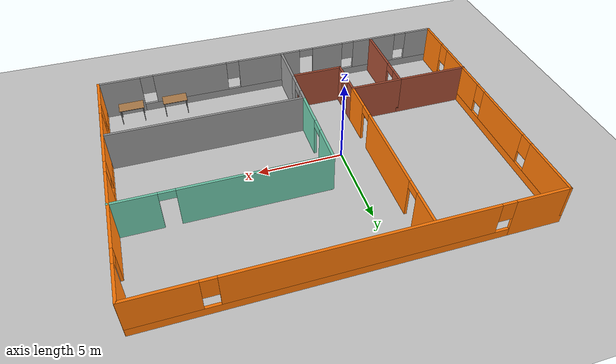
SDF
<sdf version="1.6">
 <world name="default">
  <model name="ground_plane">
   <static>1</static>
   <link name="link">
    <collision name="collision">
     <geometry><plane><normal>0 0 1</normal><size>100 100</size></plane></geometry>
     <surface><friction><ode><mu>100</mu><mu2>50</mu2></ode></friction></surface>
    </collision>
    <visual name="visual">
     <cast_shadows>0</cast_shadows>
     <geometry><plane><normal>0 0 1</normal><size>100 100</size></plane></geometry>
     <material>
      <script><uri>file://media/materials/scripts/gazebo.material</uri><name>Gazebo/Grey</name></script>
     </material>
    </visual>
   </link>
  </model>
  <model name="my_office">
   <pose>1.93379 0.156321 0 0 -0 0</pose>
   <link name="Wall_10">
    <collision name="Wall_10_Collision">
     <geometry><box><size>4.5 0.15 2.5</size></box></geometry>
     <pose>0 0 1.25 0 -0 0</pose>
    </collision>
    <visual name="Wall_10_Visual">
     <pose>0 0 1.25 0 -0 0</pose>
     <geometry><box><size>4.5 0.15 2.5</size></box></geometry>
     <material>
      <script><uri>file://media/materials/scripts/gazebo.material</uri><name>Gazebo/Bricks</name></script>
      <ambient>1 1 1 1</ambient>
     </material>
     <meta><layer>0</layer></meta>
    </visual>
    <pose>-8.9 -3.09004 0 0 -0 0</pose>
   </link>
   <link name="Wall_11">
    <pose>-6.725 -5.51504 0 0 0 -1.5708</pose>
    <visual name="Wall_11_Visual_0">
     <pose>-1.99975 0 1.25 0 -0 0</pose>
     <geometry><box><size>1.00049 0.15 2.5</size></box></geometry>
     <material>
      <script><uri>file://media/materials/scripts/gazebo.material</uri><name>Gazebo/Bricks</name></script>
      <ambient>1 1 1 1</ambient>
     </material>
     <meta><layer>0</layer></meta>
    </visual>
    <collision name="Wall_11_Collision_0">
     <geometry><box><size>1.00049 0.15 2.5</size></box></geometry>
     <pose>-1.99975 0 1.25 0 -0 0</pose>
    </collision>
    <visual name="Wall_11_Visual_1">
     <pose>0.950245 0 1.25 0 -0 0</pose>
     <geometry><box><size>3.09951 0.15 2.5</size></box></geometry>
     <material>
      <script><uri>file://media/materials/scripts/gazebo.material</uri><name>Gazebo/Bricks</name></script>
      <ambient>1 1 1 1</ambient>
     </material>
     <meta><layer>0</layer></meta>
    </visual>
    <collision name="Wall_11_Collision_1">
     <geometry><box><size>3.09951 0.15 2.5</size></box></geometry>
     <pose>0.950245 0 1.25 0 -0 0</pose>
    </collision>
    <visual name="Wall_11_Visual_2">
     <pose>-1.04951 0 2.25 0 -0 0</pose>
     <geometry><box><size>0.9 0.15 0.5</size></box></geometry>
     <material>
      <script><uri>file://media/materials/scripts/gazebo.material</uri><name>Gazebo/Bricks</name></script>
      <ambient>1 1 1 1</ambient>
     </material>
     <meta><layer>0</layer></meta>
    </visual>
    <collision name="Wall_11_Collision_2">
     <geometry><box><size>0.9 0.15 0.5</size></box></geometry>
     <pose>-1.04951 0 2.25 0 -0 0</pose>
    </collision>
   </link>
   <link name="Wall_13">
    <collision name="Wall_13_Collision">
     <geometry><box><size>3.25 0.15 2.5</size></box></geometry>
     <pose>0 0 1.25 0 -0 0</pose>
    </collision>
    <visual name="Wall_13_Visual">
     <pose>0 0 1.25 0 -0 0</pose>
     <geometry><box><size>3.25 0.15 2.5</size></box></geometry>
     <material>
      <script><uri>file://media/materials/scripts/gazebo.material</uri><name>Gazebo/Bricks</name></script>
      <ambient>1 1 1 1</ambient>
     </material>
     <meta><layer>0</layer></meta>
    </visual>
    <pose>-5.175 -3.09004 0 0 -0 0</pose>
   </link>
   <link name="Wall_14">
    <pose>-3.625 -4.26504 0 0 0 -1.5708</pose>
    <visual name="Wall_14_Visual_0">
     <pose>-0.830666 0 1.25 0 -0 0</pose>
     <geometry><box><size>0.838667 0.15 2.5</size></box></geometry>
     <material>
      <script><uri>file://media/materials/scripts/gazebo.material</uri><name>Gazebo/Bricks</name></script>
      <ambient>1 1 1 1</ambient>
     </material>
     <meta><layer>0</layer></meta>
    </visual>
    <collision name="Wall_14_Collision_0">
     <geometry><box><size>0.838667 0.15 2.5</size></box></geometry>
     <pose>-0.830666 0 1.25 0 -0 0</pose>
    </collision>
    <visual name="Wall_14_Visual_1">
     <pose>0.869334 0 1.25 0 -0 0</pose>
     <geometry><box><size>0.761333 0.15 2.5</size></box></geometry>
     <material>
      <script><uri>file://media/materials/scripts/gazebo.material</uri><name>Gazebo/Bricks</name></script>
      <ambient>1 1 1 1</ambient>
     </material>
     <meta><layer>0</layer></meta>
    </visual>
    <collision name="Wall_14_Collision_1">
     <geometry><box><size>0.761333 0.15 2.5</size></box></geometry>
     <pose>0.869334 0 1.25 0 -0 0</pose>
    </collision>
    <visual name="Wall_14_Visual_2">
     <pose>0.038667 0 2.25 0 -0 0</pose>
     <geometry><box><size>0.9 0.15 0.5</size></box></geometry>
     <material>
      <script><uri>file://media/materials/scripts/gazebo.material</uri><name>Gazebo/Bricks</name></script>
      <ambient>1 1 1 1</ambient>
     </material>
     <meta><layer>0</layer></meta>
    </visual>
    <collision name="Wall_14_Collision_2">
     <geometry><box><size>0.9 0.15 0.5</size></box></geometry>
     <pose>0.038667 0 2.25 0 -0 0</pose>
    </collision>
   </link>
   <link name="Wall_15">
    <collision name="Wall_15_Collision">
     <geometry><box><size>3.25 0.15 2.5</size></box></geometry>
     <pose>0 0 1.25 0 -0 0</pose>
    </collision>
    <visual name="Wall_15_Visual">
     <pose>0 0 1.25 0 -0 0</pose>
     <geometry><box><size>3.25 0.15 2.5</size></box></geometry>
     <material>
      <script><uri>file://media/materials/scripts/gazebo.material</uri><name>Gazebo/Bricks</name></script>
      <ambient>1 1 1 1</ambient>
     </material>
     <meta><layer>0</layer></meta>
    </visual>
    <pose>-2.075 -5.44004 0 0 -0 0</pose>
   </link>
   <link name="Wall_16">
    <collision name="Wall_16_Collision">
     <geometry><box><size>2.75 0.15 2.5</size></box></geometry>
     <pose>0 0 1.25 0 -0 0</pose>
    </collision>
    <visual name="Wall_16_Visual">
     <pose>0 0 1.25 0 -0 0</pose>
     <geometry><box><size>2.75 0.15 2.5</size></box></geometry>
     <material>
      <script><uri>file://media/materials/scripts/gazebo.material</uri><name>Gazebo/Grey</name></script>
      <ambient>1 1 1 1</ambient>
     </material>
     <meta><layer>0</layer></meta>
    </visual>
    <pose>-0.525 -6.74004 0 0 0 -1.5708</pose>
   </link>
   <link name="Wall_20">
    <pose>-0.525 -4.26504 0 0 -0 1.5708</pose>
    <visual name="Wall_20_Visual_0">
     <pose>-0.828878 0 1.25 0 -0 0</pose>
     <geometry><box><size>0.842244 0.15 2.5</size></box></geometry>
     <material>
      <script><uri>file://media/materials/scripts/gazebo.material</uri><name>Gazebo/Grey</name></script>
      <ambient>1 1 1 1</ambient>
     </material>
     <meta><layer>0</layer></meta>
    </visual>
    <collision name="Wall_20_Collision_0">
     <geometry><box><size>0.842244 0.15 2.5</size></box></geometry>
     <pose>-0.828878 0 1.25 0 -0 0</pose>
    </collision>
    <visual name="Wall_20_Visual_1">
     <pose>0.871122 0 1.25 0 -0 0</pose>
     <geometry><box><size>0.757756 0.15 2.5</size></box></geometry>
     <material>
      <script><uri>file://media/materials/scripts/gazebo.material</uri><name>Gazebo/Grey</name></script>
      <ambient>1 1 1 1</ambient>
     </material>
     <meta><layer>0</layer></meta>
    </visual>
    <collision name="Wall_20_Collision_1">
     <geometry><box><size>0.757756 0.15 2.5</size></box></geometry>
     <pose>0.871122 0 1.25 0 -0 0</pose>
    </collision>
    <visual name="Wall_20_Visual_2">
     <pose>0.042244 0 2.25 0 -0 0</pose>
     <geometry><box><size>0.9 0.15 0.5</size></box></geometry>
     <material>
      <script><uri>file://media/materials/scripts/gazebo.material</uri><name>Gazebo/Grey</name></script>
      <ambient>1 1 1 1</ambient>
     </material>
     <meta><layer>0</layer></meta>
    </visual>
    <collision name="Wall_20_Collision_2">
     <geometry><box><size>0.9 0.15 0.5</size></box></geometry>
     <pose>0.042244 0 2.25 0 -0 0</pose>
    </collision>
   </link>
   <link name="Wall_21">
    <collision name="Wall_21_Collision">
     <geometry><box><size>11.75 0.15 2.5</size></box></geometry>
     <pose>0 0 1.25 0 -0 0</pose>
    </collision>
    <visual name="Wall_21_Visual">
     <pose>0 0 1.25 0 -0 0</pose>
     <geometry><box><size>11.75 0.15 2.5</size></box></geometry>
     <material>
      <script><uri>file://media/materials/scripts/gazebo.material</uri><name>Gazebo/Grey</name></script>
      <ambient>1 1 1 1</ambient>
     </material>
     <meta><layer>0</layer></meta>
    </visual>
    <pose>5.275 -3.09004 0 0 -0 0</pose>
   </link>
   <link name="Wall_23">
    <pose>0.006559 8.05364 0 0 -0 0</pose>
    <visual name="Wall_23_Visual_0">
     <pose>-9.56369 0 1.25 0 -0 0</pose>
     <geometry><box><size>3.12262 0.15 2.5</size></box></geometry>
     <material>
      <script><uri>file://media/materials/scripts/gazebo.material</uri><name>Gazebo/Grey</name></script>
      <ambient>0.996078 0.47451 0.0196078 1</ambient>
     </material>
     <meta><layer>0</layer></meta>
    </visual>
    <collision name="Wall_23_Collision_0">
     <geometry><box><size>3.12262 0.15 2.5</size></box></geometry>
     <pose>-9.56369 0 1.25 0 -0 0</pose>
    </collision>
    <visual name="Wall_23_Visual_1">
     <pose>1.56131 0 0.25 0 -0 0</pose>
     <geometry><box><size>19.1274 0.15 0.5</size></box></geometry>
     <material>
      <script><uri>file://media/materials/scripts/gazebo.material</uri><name>Gazebo/Grey</name></script>
      <ambient>0.996078 0.47451 0.0196078 1</ambient>
     </material>
     <meta><layer>0</layer></meta>
    </visual>
    <collision name="Wall_23_Collision_1">
     <geometry><box><size>19.1274 0.15 0.5</size></box></geometry>
     <pose>1.56131 0 0.25 0 -0 0</pose>
    </collision>
    <visual name="Wall_23_Visual_2">
     <pose>-0.219236 0 1.5 0 -0 0</pose>
     <geometry><box><size>13.9663 0.15 2</size></box></geometry>
     <material>
      <script><uri>file://media/materials/scripts/gazebo.material</uri><name>Gazebo/Grey</name></script>
      <ambient>0.996078 0.47451 0.0196078 1</ambient>
     </material>
     <meta><layer>0</layer></meta>
    </visual>
    <collision name="Wall_23_Collision_2">
     <geometry><box><size>13.9663 0.15 2</size></box></geometry>
     <pose>-0.219236 0 1.5 0 -0 0</pose>
    </collision>
    <visual name="Wall_23_Visual_3">
     <pose>9.34445 0 1.5 0 -0 0</pose>
     <geometry><box><size>3.56109 0.15 2</size></box></geometry>
     <material>
      <script><uri>file://media/materials/scripts/gazebo.material</uri><name>Gazebo/Grey</name></script>
      <ambient>0.996078 0.47451 0.0196078 1</ambient>
     </material>
     <meta><layer>0</layer></meta>
    </visual>
    <collision name="Wall_23_Collision_3">
     <geometry><box><size>3.56109 0.15 2</size></box></geometry>
     <pose>9.34445 0 1.5 0 -0 0</pose>
    </collision>
    <visual name="Wall_23_Visual_4">
     <pose>-7.60238 0 1.9 0 -0 0</pose>
     <geometry><box><size>0.8 0.15 1.2</size></box></geometry>
     <material>
      <script><uri>file://media/materials/scripts/gazebo.material</uri><name>Gazebo/Grey</name></script>
      <ambient>0.996078 0.47451 0.0196078 1</ambient>
     </material>
     <meta><layer>0</layer></meta>
    </visual>
    <collision name="Wall_23_Collision_4">
     <geometry><box><size>0.8 0.15 1.2</size></box></geometry>
     <pose>-7.60238 0 1.9 0 -0 0</pose>
    </collision>
    <visual name="Wall_23_Visual_5">
     <pose>7.16391 0 1.9 0 -0 0</pose>
     <geometry><box><size>0.8 0.15 1.2</size></box></geometry>
     <material>
      <script><uri>file://media/materials/scripts/gazebo.material</uri><name>Gazebo/Grey</name></script>
      <ambient>0.996078 0.47451 0.0196078 1</ambient>
     </material>
     <meta><layer>0</layer></meta>
    </visual>
    <collision name="Wall_23_Collision_5">
     <geometry><box><size>0.8 0.15 1.2</size></box></geometry>
     <pose>7.16391 0 1.9 0 -0 0</pose>
    </collision>
   </link>
   <link name="Wall_25">
    <pose>-3.625 2.45996 0 0 -0 1.5708</pose>
    <visual name="Wall_25_Visual_0">
     <pose>-4.67974 0 1.25 0 -0 0</pose>
     <geometry><box><size>1.89051 0.15 2.5</size></box></geometry>
     <material>
      <script><uri>file://media/materials/scripts/gazebo.material</uri><name>Gazebo/Grey</name></script>
      <ambient>0.996078 0.47451 0.0196078 1</ambient>
     </material>
     <meta><layer>0</layer></meta>
    </visual>
    <collision name="Wall_25_Collision_0">
     <geometry><box><size>1.89051 0.15 2.5</size></box></geometry>
     <pose>-4.67974 0 1.25 0 -0 0</pose>
    </collision>
    <visual name="Wall_25_Visual_1">
     <pose>-0.048041 0 1.25 0 -0 0</pose>
     <geometry><box><size>5.57289 0.15 2.5</size></box></geometry>
     <material>
      <script><uri>file://media/materials/scripts/gazebo.material</uri><name>Gazebo/Grey</name></script>
      <ambient>0.996078 0.47451 0.0196078 1</ambient>
     </material>
     <meta><layer>0</layer></meta>
    </visual>
    <collision name="Wall_25_Collision_1">
     <geometry><box><size>5.57289 0.15 2.5</size></box></geometry>
     <pose>-0.048041 0 1.25 0 -0 0</pose>
    </collision>
    <visual name="Wall_25_Visual_2">
     <pose>4.6317 0 1.25 0 -0 0</pose>
     <geometry><box><size>1.9866 0.15 2.5</size></box></geometry>
     <material>
      <script><uri>file://media/materials/scripts/gazebo.material</uri><name>Gazebo/Grey</name></script>
      <ambient>0.996078 0.47451 0.0196078 1</ambient>
     </material>
     <meta><layer>0</layer></meta>
    </visual>
    <collision name="Wall_25_Collision_2">
     <geometry><box><size>1.9866 0.15 2.5</size></box></geometry>
     <pose>4.6317 0 1.25 0 -0 0</pose>
    </collision>
    <visual name="Wall_25_Visual_3">
     <pose>-3.28449 0 2.25 0 -0 0</pose>
     <geometry><box><size>0.9 0.15 0.5</size></box></geometry>
     <material>
      <script><uri>file://media/materials/scripts/gazebo.material</uri><name>Gazebo/Grey</name></script>
      <ambient>0.996078 0.47451 0.0196078 1</ambient>
     </material>
     <meta><layer>0</layer></meta>
    </visual>
    <collision name="Wall_25_Collision_3">
     <geometry><box><size>0.9 0.15 0.5</size></box></geometry>
     <pose>-3.28449 0 2.25 0 -0 0</pose>
    </collision>
    <visual name="Wall_25_Visual_4">
     <pose>3.1884 0 2.25 0 -0 0</pose>
     <geometry><box><size>0.9 0.15 0.5</size></box></geometry>
     <material>
      <script><uri>file://media/materials/scripts/gazebo.material</uri><name>Gazebo/Grey</name></script>
      <ambient>0.996078 0.47451 0.0196078 1</ambient>
     </material>
     <meta><layer>0</layer></meta>
    </visual>
    <collision name="Wall_25_Collision_4">
     <geometry><box><size>0.9 0.15 0.5</size></box></geometry>
     <pose>3.1884 0 2.25 0 -0 0</pose>
    </collision>
   </link>
   <link name="Wall_27">
    <pose>-0.525 -0.415042 0 0 -0 1.5708</pose>
    <visual name="Wall_27_Visual_0">
     <pose>-1.58224 0 1.25 0 -0 0</pose>
     <geometry><box><size>2.33552 0.15 2.5</size></box></geometry>
     <material>
      <script><uri>file://media/materials/scripts/gazebo.material</uri><name>Gazebo/Grey</name></script>
      <ambient>0.435294 0.796078 0.67451 1</ambient>
     </material>
     <meta><layer>0</layer></meta>
    </visual>
    <collision name="Wall_27_Collision_0">
     <geometry><box><size>2.33552 0.15 2.5</size></box></geometry>
     <pose>-1.58224 0 1.25 0 -0 0</pose>
    </collision>
    <visual name="Wall_27_Visual_1">
     <pose>1.61776 0 1.25 0 -0 0</pose>
     <geometry><box><size>2.26448 0.15 2.5</size></box></geometry>
     <material>
      <script><uri>file://media/materials/scripts/gazebo.material</uri><name>Gazebo/Grey</name></script>
      <ambient>0.435294 0.796078 0.67451 1</ambient>
     </material>
     <meta><layer>0</layer></meta>
    </visual>
    <collision name="Wall_27_Collision_1">
     <geometry><box><size>2.26448 0.15 2.5</size></box></geometry>
     <pose>1.61776 0 1.25 0 -0 0</pose>
    </collision>
    <visual name="Wall_27_Visual_2">
     <pose>0.035524 0 2.25 0 -0 0</pose>
     <geometry><box><size>0.9 0.15 0.5</size></box></geometry>
     <material>
      <script><uri>file://media/materials/scripts/gazebo.material</uri><name>Gazebo/Grey</name></script>
      <ambient>0.435294 0.796078 0.67451 1</ambient>
     </material>
     <meta><layer>0</layer></meta>
    </visual>
    <collision name="Wall_27_Collision_2">
     <geometry><box><size>0.9 0.15 0.5</size></box></geometry>
     <pose>0.035524 0 2.25 0 -0 0</pose>
    </collision>
   </link>
   <link name="Wall_28">
    <pose>5.275 2.25996 0 0 -0 0</pose>
    <visual name="Wall_28_Visual_0">
     <pose>-1.68884 0 1.25 0 -0 0</pose>
     <geometry><box><size>8.37231 0.15 2.5</size></box></geometry>
     <material>
      <script><uri>file://media/materials/scripts/gazebo.material</uri><name>Gazebo/Grey</name></script>
      <ambient>0.435294 0.796078 0.67451 1</ambient>
     </material>
     <meta><layer>0</layer></meta>
    </visual>
    <collision name="Wall_28_Collision_0">
     <geometry><box><size>8.37231 0.15 2.5</size></box></geometry>
     <pose>-1.68884 0 1.25 0 -0 0</pose>
    </collision>
    <visual name="Wall_28_Visual_1">
     <pose>4.63615 0 1.25 0 -0 0</pose>
     <geometry><box><size>2.47769 0.15 2.5</size></box></geometry>
     <material>
      <script><uri>file://media/materials/scripts/gazebo.material</uri><name>Gazebo/Grey</name></script>
      <ambient>0.435294 0.796078 0.67451 1</ambient>
     </material>
     <meta><layer>0</layer></meta>
    </visual>
    <collision name="Wall_28_Collision_1">
     <geometry><box><size>2.47769 0.15 2.5</size></box></geometry>
     <pose>4.63615 0 1.25 0 -0 0</pose>
    </collision>
    <visual name="Wall_28_Visual_2">
     <pose>2.94731 0 2.25 0 -0 0</pose>
     <geometry><box><size>0.9 0.15 0.5</size></box></geometry>
     <material>
      <script><uri>file://media/materials/scripts/gazebo.material</uri><name>Gazebo/Grey</name></script>
      <ambient>0.435294 0.796078 0.67451 1</ambient>
     </material>
     <meta><layer>0</layer></meta>
    </visual>
    <collision name="Wall_28_Collision_2">
     <geometry><box><size>0.9 0.15 0.5</size></box></geometry>
     <pose>2.94731 0 2.25 0 -0 0</pose>
    </collision>
   </link>
   <link name="Wall_3">
    <pose>-11.0434 0.003645 0 0 -0 1.5708</pose>
    <visual name="Wall_3_Visual_0">
     <pose>-7.02301 0 1.25 0 -0 0</pose>
     <geometry><box><size>2.20398 0.15 2.5</size></box></geometry>
     <material>
      <script><uri>file://media/materials/scripts/gazebo.material</uri><name>Gazebo/Grey</name></script>
      <ambient>0.996078 0.47451 0.0196078 1</ambient>
     </material>
     <meta><layer>0</layer></meta>
    </visual>
    <collision name="Wall_3_Collision_0">
     <geometry><box><size>2.20398 0.15 2.5</size></box></geometry>
     <pose>-7.02301 0 1.25 0 -0 0</pose>
    </collision>
    <visual name="Wall_3_Visual_1">
     <pose>1.10199 0 0.25 0 -0 0</pose>
     <geometry><box><size>14.046 0.15 0.5</size></box></geometry>
     <material>
      <script><uri>file://media/materials/scripts/gazebo.material</uri><name>Gazebo/Grey</name></script>
      <ambient>0.996078 0.47451 0.0196078 1</ambient>
     </material>
     <meta><layer>0</layer></meta>
    </visual>
    <collision name="Wall_3_Collision_1">
     <geometry><box><size>14.046 0.15 0.5</size></box></geometry>
     <pose>1.10199 0 0.25 0 -0 0</pose>
    </collision>
    <visual name="Wall_3_Visual_2">
     <pose>-3.13414 0 1.5 0 -0 0</pose>
     <geometry><box><size>3.97376 0.15 2</size></box></geometry>
     <material>
      <script><uri>file://media/materials/scripts/gazebo.material</uri><name>Gazebo/Grey</name></script>
      <ambient>0.996078 0.47451 0.0196078 1</ambient>
     </material>
     <meta><layer>0</layer></meta>
    </visual>
    <collision name="Wall_3_Collision_2">
     <geometry><box><size>3.97376 0.15 2</size></box></geometry>
     <pose>-3.13414 0 1.5 0 -0 0</pose>
    </collision>
    <visual name="Wall_3_Visual_3">
     <pose>1.72053 0 1.5 0 -0 0</pose>
     <geometry><box><size>4.13558 0.15 2</size></box></geometry>
     <material>
      <script><uri>file://media/materials/scripts/gazebo.material</uri><name>Gazebo/Grey</name></script>
      <ambient>0.996078 0.47451 0.0196078 1</ambient>
     </material>
     <meta><layer>0</layer></meta>
    </visual>
    <collision name="Wall_3_Collision_3">
     <geometry><box><size>4.13558 0.15 2</size></box></geometry>
     <pose>1.72053 0 1.5 0 -0 0</pose>
    </collision>
    <visual name="Wall_3_Visual_4">
     <pose>6.35666 0 1.5 0 -0 0</pose>
     <geometry><box><size>3.53668 0.15 2</size></box></geometry>
     <material>
      <script><uri>file://media/materials/scripts/gazebo.material</uri><name>Gazebo/Grey</name></script>
      <ambient>0.996078 0.47451 0.0196078 1</ambient>
     </material>
     <meta><layer>0</layer></meta>
    </visual>
    <collision name="Wall_3_Collision_4">
     <geometry><box><size>3.53668 0.15 2</size></box></geometry>
     <pose>6.35666 0 1.5 0 -0 0</pose>
    </collision>
    <visual name="Wall_3_Visual_5">
     <pose>-5.52102 0 1.9 0 -0 0</pose>
     <geometry><box><size>0.8 0.15 1.2</size></box></geometry>
     <material>
      <script><uri>file://media/materials/scripts/gazebo.material</uri><name>Gazebo/Grey</name></script>
      <ambient>0.996078 0.47451 0.0196078 1</ambient>
     </material>
     <meta><layer>0</layer></meta>
    </visual>
    <collision name="Wall_3_Collision_5">
     <geometry><box><size>0.8 0.15 1.2</size></box></geometry>
     <pose>-5.52102 0 1.9 0 -0 0</pose>
    </collision>
    <visual name="Wall_3_Visual_6">
     <pose>-0.747264 0 1.9 0 -0 0</pose>
     <geometry><box><size>0.8 0.15 1.2</size></box></geometry>
     <material>
      <script><uri>file://media/materials/scripts/gazebo.material</uri><name>Gazebo/Grey</name></script>
      <ambient>0.996078 0.47451 0.0196078 1</ambient>
     </material>
     <meta><layer>0</layer></meta>
    </visual>
    <collision name="Wall_3_Collision_6">
     <geometry><box><size>0.8 0.15 1.2</size></box></geometry>
     <pose>-0.747264 0 1.9 0 -0 0</pose>
    </collision>
    <visual name="Wall_3_Visual_7">
     <pose>4.18832 0 1.9 0 -0 0</pose>
     <geometry><box><size>0.8 0.15 1.2</size></box></geometry>
     <material>
      <script><uri>file://media/materials/scripts/gazebo.material</uri><name>Gazebo/Grey</name></script>
      <ambient>0.996078 0.47451 0.0196078 1</ambient>
     </material>
     <meta><layer>0</layer></meta>
    </visual>
    <collision name="Wall_3_Collision_7">
     <geometry><box><size>0.8 0.15 1.2</size></box></geometry>
     <pose>4.18832 0 1.9 0 -0 0</pose>
    </collision>
   </link>
   <link name="Wall_7">
    <pose>11.0638 -0.003621 0 0 0 -1.5708</pose>
    <visual name="Wall_7_Visual_0">
     <pose>-7.05281 0 1.25 0 -0 0</pose>
     <geometry><box><size>2.14438 0.15 2.5</size></box></geometry>
     <material>
      <script><uri>file://media/materials/scripts/gazebo.material</uri><name>Gazebo/Grey</name></script>
      <ambient>0.996078 0.47451 0.0196078 1</ambient>
     </material>
     <meta><layer>0</layer></meta>
    </visual>
    <collision name="Wall_7_Collision_0">
     <geometry><box><size>2.14438 0.15 2.5</size></box></geometry>
     <pose>-7.05281 0 1.25 0 -0 0</pose>
    </collision>
    <visual name="Wall_7_Visual_1">
     <pose>-2.49168 0 1.25 0 -0 0</pose>
     <geometry><box><size>5.17788 0.15 2.5</size></box></geometry>
     <material>
      <script><uri>file://media/materials/scripts/gazebo.material</uri><name>Gazebo/Grey</name></script>
      <ambient>0.996078 0.47451 0.0196078 1</ambient>
     </material>
     <meta><layer>0</layer></meta>
    </visual>
    <collision name="Wall_7_Collision_1">
     <geometry><box><size>5.17788 0.15 2.5</size></box></geometry>
     <pose>-2.49168 0 1.25 0 -0 0</pose>
    </collision>
    <visual name="Wall_7_Visual_2">
     <pose>4.11113 0 0.25 0 -0 0</pose>
     <geometry><box><size>8.02774 0.15 0.5</size></box></geometry>
     <material>
      <script><uri>file://media/materials/scripts/gazebo.material</uri><name>Gazebo/Grey</name></script>
      <ambient>0.996078 0.47451 0.0196078 1</ambient>
     </material>
     <meta><layer>0</layer></meta>
    </visual>
    <collision name="Wall_7_Collision_2">
     <geometry><box><size>8.02774 0.15 0.5</size></box></geometry>
     <pose>4.11113 0 0.25 0 -0 0</pose>
    </collision>
    <visual name="Wall_7_Visual_3">
     <pose>3.02574 0 1.5 0 -0 0</pose>
     <geometry><box><size>4.25695 0.15 2</size></box></geometry>
     <material>
      <script><uri>file://media/materials/scripts/gazebo.material</uri><name>Gazebo/Grey</name></script>
      <ambient>0.996078 0.47451 0.0196078 1</ambient>
     </material>
     <meta><layer>0</layer></meta>
    </visual>
    <collision name="Wall_7_Collision_3">
     <geometry><box><size>4.25695 0.15 2</size></box></geometry>
     <pose>3.02574 0 1.5 0 -0 0</pose>
    </collision>
    <visual name="Wall_7_Visual_4">
     <pose>7.03961 0 1.5 0 -0 0</pose>
     <geometry><box><size>2.17079 0.15 2</size></box></geometry>
     <material>
      <script><uri>file://media/materials/scripts/gazebo.material</uri><name>Gazebo/Grey</name></script>
      <ambient>0.996078 0.47451 0.0196078 1</ambient>
     </material>
     <meta><layer>0</layer></meta>
    </visual>
    <collision name="Wall_7_Collision_4">
     <geometry><box><size>2.17079 0.15 2</size></box></geometry>
     <pose>7.03961 0 1.5 0 -0 0</pose>
    </collision>
    <visual name="Wall_7_Visual_5">
     <pose>0.497264 0 1.9 0 -0 0</pose>
     <geometry><box><size>0.8 0.15 1.2</size></box></geometry>
     <material>
      <script><uri>file://media/materials/scripts/gazebo.material</uri><name>Gazebo/Grey</name></script>
      <ambient>0.996078 0.47451 0.0196078 1</ambient>
     </material>
     <meta><layer>0</layer></meta>
    </visual>
    <collision name="Wall_7_Collision_5">
     <geometry><box><size>0.8 0.15 1.2</size></box></geometry>
     <pose>0.497264 0 1.9 0 -0 0</pose>
    </collision>
    <visual name="Wall_7_Visual_6">
     <pose>5.55421 0 1.9 0 -0 0</pose>
     <geometry><box><size>0.8 0.15 1.2</size></box></geometry>
     <material>
      <script><uri>file://media/materials/scripts/gazebo.material</uri><name>Gazebo/Grey</name></script>
      <ambient>0.996078 0.47451 0.0196078 1</ambient>
     </material>
     <meta><layer>0</layer></meta>
    </visual>
    <collision name="Wall_7_Collision_6">
     <geometry><box><size>0.8 0.15 1.2</size></box></geometry>
     <pose>5.55421 0 1.9 0 -0 0</pose>
    </collision>
    <visual name="Wall_7_Visual_7">
     <pose>-5.53062 0 2.25 0 -0 0</pose>
     <geometry><box><size>0.9 0.15 0.5</size></box></geometry>
     <material>
      <script><uri>file://media/materials/scripts/gazebo.material</uri><name>Gazebo/Grey</name></script>
      <ambient>0.996078 0.47451 0.0196078 1</ambient>
     </material>
     <meta><layer>0</layer></meta>
    </visual>
    <collision name="Wall_7_Collision_7">
     <geometry><box><size>0.9 0.15 0.5</size></box></geometry>
     <pose>-5.53062 0 2.25 0 -0 0</pose>
    </collision>
   </link>
   <link name="Wall_8">
    <pose>-0.010036 -8.04999 0 0 -0 3.14126</pose>
    <visual name="Wall_8_Visual_0">
     <pose>-9.85014 0 1.25 0 -0 0</pose>
     <geometry><box><size>2.51652 0.15 2.5</size></box></geometry>
     <material>
      <script><uri>file://media/materials/scripts/gazebo.material</uri><name>Gazebo/Grey</name></script>
      <ambient>1 1 1 1</ambient>
     </material>
     <meta><layer>0</layer></meta>
    </visual>
    <collision name="Wall_8_Collision_0">
     <geometry><box><size>2.51652 0.15 2.5</size></box></geometry>
     <pose>-9.85014 0 1.25 0 -0 0</pose>
    </collision>
    <visual name="Wall_8_Visual_1">
     <pose>3.64618 0 1.25 0 -0 0</pose>
     <geometry><box><size>2.06273 0.15 2.5</size></box></geometry>
     <material>
      <script><uri>file://media/materials/scripts/gazebo.material</uri><name>Gazebo/Grey</name></script>
      <ambient>1 1 1 1</ambient>
     </material>
     <meta><layer>0</layer></meta>
    </visual>
    <collision name="Wall_8_Collision_1">
     <geometry><box><size>2.06273 0.15 2.5</size></box></geometry>
     <pose>3.64618 0 1.25 0 -0 0</pose>
    </collision>
    <visual name="Wall_8_Visual_2">
     <pose>-3.43853 0 0.25 0 -0 0</pose>
     <geometry><box><size>10.3067 0.15 0.5</size></box></geometry>
     <material>
      <script><uri>file://media/materials/scripts/gazebo.material</uri><name>Gazebo/Grey</name></script>
      <ambient>1 1 1 1</ambient>
     </material>
     <meta><layer>0</layer></meta>
    </visual>
    <collision name="Wall_8_Collision_2">
     <geometry><box><size>10.3067 0.15 0.5</size></box></geometry>
     <pose>-3.43853 0 0.25 0 -0 0</pose>
    </collision>
    <visual name="Wall_8_Visual_3">
     <pose>7.89298 0 0.25 0 -0 0</pose>
     <geometry><box><size>6.43086 0.15 0.5</size></box></geometry>
     <material>
      <script><uri>file://media/materials/scripts/gazebo.material</uri><name>Gazebo/Grey</name></script>
      <ambient>1 1 1 1</ambient>
     </material>
     <meta><layer>0</layer></meta>
    </visual>
    <collision name="Wall_8_Collision_3">
     <geometry><box><size>6.43086 0.15 0.5</size></box></geometry>
     <pose>7.89298 0 0.25 0 -0 0</pose>
    </collision>
    <visual name="Wall_8_Visual_4">
     <pose>-5.48134 0 1.5 0 -0 0</pose>
     <geometry><box><size>4.62109 0.15 2</size></box></geometry>
     <material>
      <script><uri>file://media/materials/scripts/gazebo.material</uri><name>Gazebo/Grey</name></script>
      <ambient>1 1 1 1</ambient>
     </material>
     <meta><layer>0</layer></meta>
    </visual>
    <collision name="Wall_8_Collision_4">
     <geometry><box><size>4.62109 0.15 2</size></box></geometry>
     <pose>-5.48134 0 1.5 0 -0 0</pose>
    </collision>
    <visual name="Wall_8_Visual_5">
     <pose>-0.327992 0 1.5 0 -0 0</pose>
     <geometry><box><size>4.08561 0.15 2</size></box></geometry>
     <material>
      <script><uri>file://media/materials/scripts/gazebo.material</uri><name>Gazebo/Grey</name></script>
      <ambient>1 1 1 1</ambient>
     </material>
     <meta><layer>0</layer></meta>
    </visual>
    <collision name="Wall_8_Collision_5">
     <geometry><box><size>4.08561 0.15 2</size></box></geometry>
     <pose>-0.327992 0 1.5 0 -0 0</pose>
    </collision>
    <visual name="Wall_8_Visual_6">
     <pose>-0.327992 0 1.5 0 -0 0</pose>
     <geometry><box><size>4.08561 0.15 2</size></box></geometry>
     <material>
      <script><uri>file://media/materials/scripts/gazebo.material</uri><name>Gazebo/Grey</name></script>
      <ambient>1 1 1 1</ambient>
     </material>
     <meta><layer>0</layer></meta>
    </visual>
    <collision name="Wall_8_Collision_6">
     <geometry><box><size>4.08561 0.15 2</size></box></geometry>
     <pose>-0.327992 0 1.5 0 -0 0</pose>
    </collision>
    <visual name="Wall_8_Visual_7">
     <pose>6.97895 0 1.5 0 -0 0</pose>
     <geometry><box><size>3.00281 0.15 2</size></box></geometry>
     <material>
      <script><uri>file://media/materials/scripts/gazebo.material</uri><name>Gazebo/Grey</name></script>
      <ambient>1 1 1 1</ambient>
     </material>
     <meta><layer>0</layer></meta>
    </visual>
    <collision name="Wall_8_Collision_7">
     <geometry><box><size>3.00281 0.15 2</size></box></geometry>
     <pose>6.97895 0 1.5 0 -0 0</pose>
    </collision>
    <visual name="Wall_8_Visual_8">
     <pose>10.1944 0 1.5 0 -0 0</pose>
     <geometry><box><size>1.82805 0.15 2</size></box></geometry>
     <material>
      <script><uri>file://media/materials/scripts/gazebo.material</uri><name>Gazebo/Grey</name></script>
      <ambient>1 1 1 1</ambient>
     </material>
     <meta><layer>0</layer></meta>
    </visual>
    <collision name="Wall_8_Collision_8">
     <geometry><box><size>1.82805 0.15 2</size></box></geometry>
     <pose>10.1944 0 1.5 0 -0 0</pose>
    </collision>
    <visual name="Wall_8_Visual_9">
     <pose>-8.19188 0 1.9 0 -0 0</pose>
     <geometry><box><size>0.8 0.15 1.2</size></box></geometry>
     <material>
      <script><uri>file://media/materials/scripts/gazebo.material</uri><name>Gazebo/Grey</name></script>
      <ambient>1 1 1 1</ambient>
     </material>
     <meta><layer>0</layer></meta>
    </visual>
    <collision name="Wall_8_Collision_9">
     <geometry><box><size>0.8 0.15 1.2</size></box></geometry>
     <pose>-8.19188 0 1.9 0 -0 0</pose>
    </collision>
    <visual name="Wall_8_Visual_10">
     <pose>5.07755 0 1.9 0 -0 0</pose>
     <geometry><box><size>0.8 0.15 1.2</size></box></geometry>
     <material>
      <script><uri>file://media/materials/scripts/gazebo.material</uri><name>Gazebo/Grey</name></script>
      <ambient>1 1 1 1</ambient>
     </material>
     <meta><layer>0</layer></meta>
    </visual>
    <collision name="Wall_8_Collision_10">
     <geometry><box><size>0.8 0.15 1.2</size></box></geometry>
     <pose>5.07755 0 1.9 0 -0 0</pose>
    </collision>
    <visual name="Wall_8_Visual_11">
     <pose>-2.7708 0 1.9 0 -0 0</pose>
     <geometry><box><size>0.8 0.15 1.2</size></box></geometry>
     <material>
      <script><uri>file://media/materials/scripts/gazebo.material</uri><name>Gazebo/Grey</name></script>
      <ambient>1 1 1 1</ambient>
     </material>
     <meta><layer>0</layer></meta>
    </visual>
    <collision name="Wall_8_Collision_11">
     <geometry><box><size>0.8 0.15 1.2</size></box></geometry>
     <pose>-2.7708 0 1.9 0 -0 0</pose>
    </collision>
    <visual name="Wall_8_Visual_12">
     <pose>8.88036 0 1.9 0 -0 0</pose>
     <geometry><box><size>0.8 0.15 1.2</size></box></geometry>
     <material>
      <script><uri>file://media/materials/scripts/gazebo.material</uri><name>Gazebo/Grey</name></script>
      <ambient>1 1 1 1</ambient>
     </material>
     <meta><layer>0</layer></meta>
    </visual>
    <collision name="Wall_8_Collision_12">
     <geometry><box><size>0.8 0.15 1.2</size></box></geometry>
     <pose>8.88036 0 1.9 0 -0 0</pose>
    </collision>
    <visual name="Wall_8_Visual_13">
     <pose>2.16481 0 2.25 0 -0 0</pose>
     <geometry><box><size>0.9 0.15 0.5</size></box></geometry>
     <material>
      <script><uri>file://media/materials/scripts/gazebo.material</uri><name>Gazebo/Grey</name></script>
      <ambient>1 1 1 1</ambient>
     </material>
     <meta><layer>0</layer></meta>
    </visual>
    <collision name="Wall_8_Collision_13">
     <geometry><box><size>0.9 0.15 0.5</size></box></geometry>
     <pose>2.16481 0 2.25 0 -0 0</pose>
    </collision>
    <visual name="Wall_8_Visual_14">
     <pose>2.16481 0 2.25 0 -0 0</pose>
     <geometry><box><size>0.9 0.15 0.5</size></box></geometry>
     <material>
      <script><uri>file://media/materials/scripts/gazebo.material</uri><name>Gazebo/Grey</name></script>
      <ambient>1 1 1 1</ambient>
     </material>
     <meta><layer>0</layer></meta>
    </visual>
    <collision name="Wall_8_Collision_14">
     <geometry><box><size>0.9 0.15 0.5</size></box></geometry>
     <pose>2.16481 0 2.25 0 -0 0</pose>
    </collision>
   </link>
   <static>1</static>
  </model>
  <model name="table">
   <static>1</static>
   <link name="link">
    <collision name="surface">
     <pose>0 0 1 0 -0 0</pose>
     <geometry><box><size>1.5 0.8 0.03</size></box></geometry>
     <surface><friction><ode><mu>0.6</mu><mu2>0.6</mu2></ode></friction></surface>
    </collision>
    <visual name="visual1">
     <pose>0 0 1 0 -0 0</pose>
     <geometry><box><size>1.5 0.8 0.03</size></box></geometry>
     <material>
      <script><uri>file://media/materials/scripts/gazebo.material</uri><name>Gazebo/Wood</name></script>
     </material>
    </visual>
    <collision name="front_left_leg">
     <pose>0.68 0.38 0.5 0 -0 0</pose>
     <geometry><cylinder><radius>0.02</radius><length>1</length></cylinder></geometry>
    </collision>
    <visual name="front_left_leg">
     <pose>0.68 0.38 0.5 0 -0 0</pose>
     <geometry><cylinder><radius>0.02</radius><length>1</length></cylinder></geometry>
     <material>
      <script><uri>file://media/materials/scripts/gazebo.material</uri><name>Gazebo/Grey</name></script>
     </material>
    </visual>
    <collision name="front_right_leg">
     <pose>0.68 -0.38 0.5 0 -0 0</pose>
     <geometry><cylinder><radius>0.02</radius><length>1</length></cylinder></geometry>
    </collision>
    <visual name="front_right_leg">
     <pose>0.68 -0.38 0.5 0 -0 0</pose>
     <geometry><cylinder><radius>0.02</radius><length>1</length></cylinder></geometry>
     <material>
      <script><uri>file://media/materials/scripts/gazebo.material</uri><name>Gazebo/Grey</name></script>
     </material>
    </visual>
    <collision name="back_right_leg">
     <pose>-0.68 -0.38 0.5 0 -0 0</pose>
     <geometry><cylinder><radius>0.02</radius><length>1</length></cylinder></geometry>
    </collision>
    <visual name="back_right_leg">
     <pose>-0.68 -0.38 0.5 0 -0 0</pose>
     <geometry><cylinder><radius>0.02</radius><length>1</length></cylinder></geometry>
     <material>
      <script><uri>file://media/materials/scripts/gazebo.material</uri><name>Gazebo/Grey</name></script>
     </material>
    </visual>
    <collision name="back_left_leg">
     <pose>-0.68 0.38 0.5 0 -0 0</pose>
     <geometry><cylinder><radius>0.02</radius><length>1</length></cylinder></geometry>
    </collision>
    <visual name="back_left_leg">
     <pose>-0.68 0.38 0.5 0 -0 0</pose>
     <geometry><cylinder><radius>0.02</radius><length>1</length></cylinder></geometry>
     <material>
      <script><uri>file://media/materials/scripts/gazebo.material</uri><name>Gazebo/Grey</name></script>
     </material>
    </visual>
   </link>
   <pose>8.68028 -7.15072 0 0 -0 0</pose>
  </model>
  <model name="table_clone">
   <static>1</static>
   <link name="link">
    <collision name="surface">
     <pose>0 0 1 0 -0 0</pose>
     <geometry><box><size>1.5 0.8 0.03</size></box></geometry>
     <surface><friction><ode><mu>0.6</mu><mu2>0.6</mu2></ode></friction></surface>
    </collision>
    <visual name="visual1">
     <pose>0 0 1 0 -0 0</pose>
     <geometry><box><size>1.5 0.8 0.03</size></box></geometry>
     <material>
      <script><uri>file://media/materials/scripts/gazebo.material</uri><name>Gazebo/Wood</name></script>
     </material>
    </visual>
    <collision name="front_left_leg">
     <pose>0.68 0.38 0.5 0 -0 0</pose>
     <geometry><cylinder><radius>0.02</radius><length>1</length></cylinder></geometry>
    </collision>
    <visual name="front_left_leg">
     <pose>0.68 0.38 0.5 0 -0 0</pose>
     <geometry><cylinder><radius>0.02</radius><length>1</length></cylinder></geometry>
     <material>
      <script><uri>file://media/materials/scripts/gazebo.material</uri><name>Gazebo/Grey</name></script>
     </material>
    </visual>
    <collision name="front_right_leg">
     <pose>0.68 -0.38 0.5 0 -0 0</pose>
     <geometry><cylinder><radius>0.02</radius><length>1</length></cylinder></geometry>
    </collision>
    <visual name="front_right_leg">
     <pose>0.68 -0.38 0.5 0 -0 0</pose>
     <geometry><cylinder><radius>0.02</radius><length>1</length></cylinder></geometry>
     <material>
      <script><uri>file://media/materials/scripts/gazebo.material</uri><name>Gazebo/Grey</name></script>
     </material>
    </visual>
    <collision name="back_right_leg">
     <pose>-0.68 -0.38 0.5 0 -0 0</pose>
     <geometry><cylinder><radius>0.02</radius><length>1</length></cylinder></geometry>
    </collision>
    <visual name="back_right_leg">
     <pose>-0.68 -0.38 0.5 0 -0 0</pose>
     <geometry><cylinder><radius>0.02</radius><length>1</length></cylinder></geometry>
     <material>
      <script><uri>file://media/materials/scripts/gazebo.material</uri><name>Gazebo/Grey</name></script>
     </material>
    </visual>
    <collision name="back_left_leg">
     <pose>-0.68 0.38 0.5 0 -0 0</pose>
     <geometry><cylinder><radius>0.02</radius><length>1</length></cylinder></geometry>
    </collision>
    <visual name="back_left_leg">
     <pose>-0.68 0.38 0.5 0 -0 0</pose>
     <geometry><cylinder><radius>0.02</radius><length>1</length></cylinder></geometry>
     <material>
      <script><uri>file://media/materials/scripts/gazebo.material</uri><name>Gazebo/Grey</name></script>
     </material>
    </visual>
   </link>
   <pose>11.3687 -7.18984 0 0 -0 0</pose>
  </model>
  <model name="table_clone_0">
   <static>1</static>
   <link name="link">
    <collision name="surface">
     <pose>0 0 1 0 -0 0</pose>
     <geometry><box><size>1.5 0.8 0.03</size></box></geometry>
     <surface><friction><ode><mu>0.6</mu><mu2>0.6</mu2></ode></friction></surface>
    </collision>
    <visual name="visual1">
     <pose>0 0 1 0 -0 0</pose>
     <geometry><box><size>1.5 0.8 0.03</size></box></geometry>
     <material>
      <script><uri>file://media/materials/scripts/gazebo.material</uri><name>Gazebo/Wood</name></script>
     </material>
    </visual>
    <collision name="front_left_leg">
     <pose>0.68 0.38 0.5 0 -0 0</pose>
     <geometry><cylinder><radius>0.02</radius><length>1</length></cylinder></geometry>
    </collision>
    <visual name="front_left_leg">
     <pose>0.68 0.38 0.5 0 -0 0</pose>
     <geometry><cylinder><radius>0.02</radius><length>1</length></cylinder></geometry>
     <material>
      <script><uri>file://media/materials/scripts/gazebo.material</uri><name>Gazebo/Grey</name></script>
     </material>
    </visual>
    <collision name="front_right_leg">
     <pose>0.68 -0.38 0.5 0 -0 0</pose>
     <geometry><cylinder><radius>0.02</radius><length>1</length></cylinder></geometry>
    </collision>
    <visual name="front_right_leg">
     <pose>0.68 -0.38 0.5 0 -0 0</pose>
     <geometry><cylinder><radius>0.02</radius><length>1</length></cylinder></geometry>
     <material>
      <script><uri>file://media/materials/scripts/gazebo.material</uri><name>Gazebo/Grey</name></script>
     </material>
    </visual>
    <collision name="back_right_leg">
     <pose>-0.68 -0.38 0.5 0 -0 0</pose>
     <geometry><cylinder><radius>0.02</radius><length>1</length></cylinder></geometry>
    </collision>
    <visual name="back_right_leg">
     <pose>-0.68 -0.38 0.5 0 -0 0</pose>
     <geometry><cylinder><radius>0.02</radius><length>1</length></cylinder></geometry>
     <material>
      <script><uri>file://media/materials/scripts/gazebo.material</uri><name>Gazebo/Grey</name></script>
     </material>
    </visual>
    <collision name="back_left_leg">
     <pose>-0.68 0.38 0.5 0 -0 0</pose>
     <geometry><cylinder><radius>0.02</radius><length>1</length></cylinder></geometry>
    </collision>
    <visual name="back_left_leg">
     <pose>-0.68 0.38 0.5 0 -0 0</pose>
     <geometry><cylinder><radius>0.02</radius><length>1</length></cylinder></geometry>
     <material>
      <script><uri>file://media/materials/scripts/gazebo.material</uri><name>Gazebo/Grey</name></script>
     </material>
    </visual>
   </link>
   <pose>8.57226 -3.51639 0 0 -0 0</pose>
  </model>
 </world>
</sdf>
